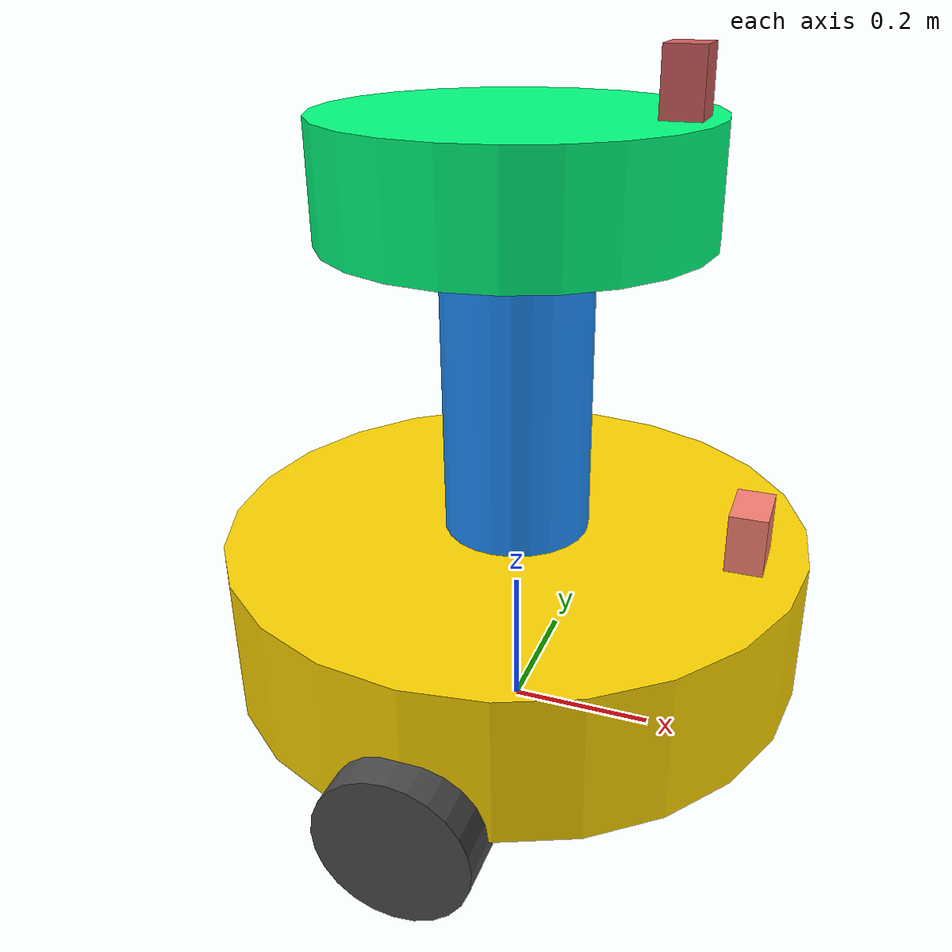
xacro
<?xml version="1.0"?>
<!-- Stage 9: reuse every stage-8 physical part and existing plugin unchanged. -->
<robot name="lesson13_robot" xmlns:xacro="http://www.ros.org/wiki/xacro">
  <xacro:include filename="myrobot_tf_step8.xacro"/>
  <xacro:include filename="gazebo_sensor/lesson14_camera_step9.xacro"/>
</robot>

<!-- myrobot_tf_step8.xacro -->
<robot name="lesson13_robot" xmlns:xacro="http://www.ros.org/wiki/xacro">
  <xacro:include filename="myrobot_laser_step7.xacro"/>

  <gazebo>
    <plugin name="lesson14_aux_joint_states" filename="libgazebo_ros_joint_state_publisher.so">
      <robotNamespace>/</robotNamespace>
      <updateRate>50</updateRate>
      <jointName>front_support_wheel_link2_base_link,back_support_wheel_link2_base_link,laser_scan_link2platform_link,depth_camera_link2base_link</jointName>
    </plugin>
  </gazebo>
</robot>

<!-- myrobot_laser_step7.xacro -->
<!-- Stage 7: retain the stage-6 robot and single drive plugin; add only lidar. -->
<robot name="lesson13_robot" xmlns:xacro="http://www.ros.org/wiki/xacro">
  <xacro:include filename="myrobot_drive_step6.xacro"/>
  <xacro:include filename="gazebo_sensor/lesson14_laser_step7.xacro"/>
</robot>

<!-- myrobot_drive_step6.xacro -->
<!-- Stage 6: retain the proven stage-4 model; add only the differential drive. -->
<robot name="lesson13_robot" xmlns:xacro="http://www.ros.org/wiki/xacro">
  <!-- Relative include resolves beside this file inside rcdp/urdf/gazebo/. -->
  <xacro:include filename="myrobot_gazebo_step4.xacro"/>

  <gazebo>
    <plugin name="lesson13_diff_drive" filename="libgazebo_ros_diff_drive.so">
      <robotNamespace>/</robotNamespace>
      <updateRate>100</updateRate>
      <leftJoint>base_l_wheel_joint</leftJoint>
      <rightJoint>base_r_wheel_joint</rightJoint>
      <wheelSeparation>${2.0*base_radius}</wheelSeparation>
      <wheelDiameter>${2.0*move_wheel_radius}</wheelDiameter>
      <!-- wheelAcceleration is the wheel tangential speed ramp in m/s^2. -->
      <wheelAcceleration>0.3</wheelAcceleration>
      <wheelTorque>5.0</wheelTorque>
      <commandTopic>/cmd_vel</commandTopic>
      <odometryTopic>/odom</odometryTopic>
      <odometryFrame>odom</odometryFrame>
      <robotBaseFrame>root_link</robotBaseFrame>
      <!-- Ground-truth simulation odometry, not a real encoder estimator. -->
      <odometrySource>world</odometrySource>
      <publishTf>true</publishTf>
      <publishOdomTF>true</publishOdomTF>
      <!-- A later robot_state_publisher should own link transforms. -->
      <publishWheelTF>false</publishWheelTF>
      <publishWheelJointState>true</publishWheelJointState>
    </plugin>
  </gazebo>
</robot>

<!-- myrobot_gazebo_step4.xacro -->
<robot name="lesson13_robot" xmlns:xacro="http://www.ros.org/wiki/xacro">
  <xacro:property name="Pi" value="3.141592653589793"/>
  <xacro:property name="base_radius" value="0.4"/>
  <xacro:property name="base_height" value="0.2"/>
  <xacro:property name="move_wheel_radius" value="0.1"/>
  <xacro:property name="move_wheel_height" value="0.08"/>
  <xacro:property name="support_wheel_radius" value="0.05"/>
  <xacro:property name="support_radius" value="0.1"/>
  <xacro:property name="support_height" value="0.4"/>
  <xacro:property name="platform_radius" value="0.25"/>
  <xacro:property name="platform_height" value="0.15"/>
  <xacro:property name="laser_length" value="0.05"/>
  <xacro:property name="laser_width" value="0.06"/>
  <xacro:property name="laser_height" value="0.08"/>
  <xacro:property name="depth_length" value="0.05"/>
  <xacro:property name="depth_width" value="0.08"/>
  <xacro:property name="depth_height" value="0.08"/>

  <!-- Cylinder symmetry axis is the link's Z axis. -->
  <xacro:macro name="cylinder_z_inertia" params="m r h">
    <inertial>
      <origin xyz="0 0 0" rpy="0 0 0"/>
      <mass value="${m}"/>
      <inertia ixx="${m*(3*r*r+h*h)/12.0}" ixy="0" ixz="0"
               iyy="${m*(3*r*r+h*h)/12.0}" iyz="0" izz="${m*r*r/2.0}"/>
    </inertial>
  </xacro:macro>

  <!-- Wheel cylinder symmetry axis is Y, matching its collision and joint. -->
  <xacro:macro name="wheel_y_inertia" params="m r h">
    <inertial>
      <origin xyz="0 0 0" rpy="0 0 0"/>
      <mass value="${m}"/>
      <inertia ixx="${m*(3*r*r+h*h)/12.0}" ixy="0" ixz="0"
               iyy="${m*r*r/2.0}" iyz="0" izz="${m*(3*r*r+h*h)/12.0}"/>
    </inertial>
  </xacro:macro>

  <xacro:macro name="sphere_inertia" params="m r">
    <inertial>
      <origin xyz="0 0 0" rpy="0 0 0"/>
      <mass value="${m}"/>
      <inertia ixx="${2.0*m*r*r/5.0}" ixy="0" ixz="0"
               iyy="${2.0*m*r*r/5.0}" iyz="0" izz="${2.0*m*r*r/5.0}"/>
    </inertial>
  </xacro:macro>

  <!-- Box dimensions are x along X, y along Y, z along Z. -->
  <xacro:macro name="box_inertia" params="m x y z">
    <inertial>
      <origin xyz="0 0 0" rpy="0 0 0"/>
      <mass value="${m}"/>
      <inertia ixx="${m*(y*y+z*z)/12.0}" ixy="0" ixz="0"
               iyy="${m*(x*x+z*z)/12.0}" iyz="0" izz="${m*(x*x+y*y)/12.0}"/>
    </inertial>
  </xacro:macro>

  <xacro:macro name="cylinder_body" params="name r h m rgba gz_material">
    <link name="${name}">
      <visual>
        <geometry><cylinder radius="${r}" length="${h}"/></geometry>
        <material name="${name}_color"><color rgba="${rgba}"/></material>
      </visual>
      <collision>
        <geometry><cylinder radius="${r}" length="${h}"/></geometry>
      </collision>
      <xacro:cylinder_z_inertia m="${m}" r="${r}" h="${h}"/>
    </link>
    <gazebo reference="${name}"><material>${gz_material}</material></gazebo>
  </xacro:macro>

  <xacro:macro name="box_body" params="name x y z m rgba gz_material">
    <link name="${name}">
      <visual>
        <geometry><box size="${x} ${y} ${z}"/></geometry>
        <material name="${name}_color"><color rgba="${rgba}"/></material>
      </visual>
      <collision><geometry><box size="${x} ${y} ${z}"/></geometry></collision>
      <xacro:box_inertia m="${m}" x="${x}" y="${y}" z="${z}"/>
    </link>
    <gazebo reference="${name}"><material>${gz_material}</material></gazebo>
  </xacro:macro>

  <xacro:macro name="contact_parameters" params="name mu">
    <gazebo reference="${name}">
      <mu1>${mu}</mu1><mu2>${mu}</mu2>
      <kp>100000</kp><kd>10</kd>
      <minDepth>0.001</minDepth><maxVel>0.1</maxVel>
    </gazebo>
  </xacro:macro>

  <!-- Massless reference only: no tiny physical body or inertia at the root. -->
  <link name="root_link"/>

  <xacro:cylinder_body name="base_link" r="${base_radius}" h="${base_height}"
                       m="5.0" rgba="1 0.843 0 1" gz_material="Gazebo/Yellow"/>
  <xacro:cylinder_body name="support_link" r="${support_radius}" h="${support_height}"
                       m="0.3" rgba="0.118 0.565 1 1" gz_material="Gazebo/Blue"/>
  <xacro:cylinder_body name="platform_link" r="${platform_radius}" h="${platform_height}"
                       m="1.0" rgba="0 1 0.498 1" gz_material="Gazebo/Green"/>

  <joint name="base_link2root_link" type="fixed">
    <parent link="root_link"/><child link="base_link"/>
    <origin xyz="0 0 ${base_height/2.0+move_wheel_radius}" rpy="0 0 0"/>
  </joint>
  <joint name="support_link2base_link" type="fixed">
    <parent link="base_link"/><child link="support_link"/>
    <origin xyz="0 0 ${base_height/2.0+support_height/2.0}" rpy="0 0 0"/>
  </joint>
  <joint name="platform_link2support_link" type="fixed">
    <parent link="support_link"/><child link="platform_link"/>
    <origin xyz="0 0 ${support_height/2.0+platform_height/2.0}" rpy="0 0 0"/>
  </joint>

  <xacro:macro name="support_wheel" params="wheel_name flag">
    <link name="${wheel_name}_support_wheel_link">
      <visual>
        <geometry><sphere radius="${support_wheel_radius}"/></geometry>
        <material name="${wheel_name}_support_color"><color rgba="0.933 0.51 0.933 1"/></material>
      </visual>
      <collision><geometry><sphere radius="${support_wheel_radius}"/></geometry></collision>
      <xacro:sphere_inertia m="0.05" r="${support_wheel_radius}"/>
    </link>
    <joint name="${wheel_name}_support_wheel_link2_base_link" type="continuous">
      <parent link="base_link"/><child link="${wheel_name}_support_wheel_link"/>
      <origin xyz="${flag*0.8*base_radius} 0 ${-(base_height/2.0+support_wheel_radius)}" rpy="0 0 0"/>
      <!-- Unit vector in the same (1,1,1) direction as the teaching model. -->
      <axis xyz="0.577350269189626 0.577350269189626 0.577350269189626"/>
      <limit effort="1" velocity="20"/>
      <dynamics damping="0.001" friction="0"/>
    </joint>
    <gazebo reference="${wheel_name}_support_wheel_link"><material>Gazebo/Grey</material></gazebo>
    <!-- Low-friction teaching approximation; this is not a true caster. -->
    <xacro:contact_parameters name="${wheel_name}_support_wheel_link" mu="0.01"/>
  </xacro:macro>
  <xacro:support_wheel wheel_name="front" flag="1"/>
  <xacro:support_wheel wheel_name="back" flag="-1"/>

  <xacro:macro name="drive_wheel" params="wheel_name flag side">
    <link name="${wheel_name}_wheel_link">
      <visual>
        <origin xyz="0 0 0" rpy="${Pi/2.0} 0 0"/>
        <geometry><cylinder radius="${move_wheel_radius}" length="${move_wheel_height}"/></geometry>
        <material name="${wheel_name}_wheel_color"><color rgba="0.3 0.3 0.3 1"/></material>
      </visual>
      <collision>
        <origin xyz="0 0 0" rpy="${Pi/2.0} 0 0"/>
        <geometry><cylinder radius="${move_wheel_radius}" length="${move_wheel_height}"/></geometry>
      </collision>
      <xacro:wheel_y_inertia m="0.3" r="${move_wheel_radius}" h="${move_wheel_height}"/>
    </link>
    <joint name="base_${side}_wheel_joint" type="continuous">
      <parent link="base_link"/><child link="${wheel_name}_wheel_link"/>
      <origin xyz="0 ${flag*base_radius} ${-base_height/2.0}" rpy="0 0 0"/>
      <axis xyz="0 1 0"/>
      <limit effort="10" velocity="10"/>
      <dynamics damping="0.02" friction="0"/>
    </joint>
    <gazebo reference="${wheel_name}_wheel_link"><material>Gazebo/Grey</material></gazebo>
    <xacro:contact_parameters name="${wheel_name}_wheel_link" mu="0.8"/>
  </xacro:macro>
  <xacro:drive_wheel wheel_name="left" flag="1" side="l"/>
  <xacro:drive_wheel wheel_name="right" flag="-1" side="r"/>

  <xacro:box_body name="laser_scan_link" x="${laser_length}" y="${laser_width}" z="${laser_height}"
                  m="0.1" rgba="0.804 0.361 0.361 1" gz_material="Gazebo/Red"/>
  <xacro:box_body name="depth_camera_link" x="${depth_length}" y="${depth_width}" z="${depth_height}"
                  m="0.1" rgba="0.981 0.502 0.447 1" gz_material="Gazebo/Orange"/>

  <joint name="laser_scan_link2platform_link" type="continuous">
    <parent link="platform_link"/><child link="laser_scan_link"/>
    <origin xyz="${0.8*platform_radius} 0 ${platform_height/2.0+laser_height/2.0}" rpy="0 0 0"/>
    <axis xyz="0 0 1"/>
    <limit effort="1" velocity="5"/>
    <dynamics damping="0.05" friction="0"/>
  </joint>
  <joint name="depth_camera_link2base_link" type="revolute">
    <parent link="base_link"/><child link="depth_camera_link"/>
    <origin xyz="${0.8*base_radius} 0 ${base_height/2.0+depth_height/2.0}" rpy="0 0 0"/>
    <axis xyz="0 0 1"/>
    <!-- The slide requires +/-180 degrees; the original code used +/-1.57. -->
    <limit lower="${-Pi}" upper="${Pi}" effort="10" velocity="3"/>
    <dynamics damping="0.05" friction="0"/>
  </joint>

  <gazebo><static>false</static></gazebo>
</robot>

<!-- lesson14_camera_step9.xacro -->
<robot name="lesson14_camera" xmlns:xacro="http://www.ros.org/wiki/xacro">
  <link name="rotate_depth_camera_link"/>
  <joint name="depth_camera_optical_joint_step9" type="fixed">
    <parent link="depth_camera_link"/>
    <child link="rotate_depth_camera_link"/>
    <origin xyz="${depth_length/2.0+0.001} 0 0" rpy="${-Pi/2.0} 0 ${-Pi/2.0}"/>
  </joint>

  <gazebo reference="depth_camera_link">
    <sensor type="depth" name="lesson14_kinect_step9">
      <pose>${depth_length/2.0+0.001} 0 0 0 0 0</pose>
      <always_on>true</always_on>
      <!-- Lesson14 uses 20 Hz at the sensor; begin with 10 Hz in VMware. -->
      <update_rate>10.0</update_rate>
      <camera>
        <horizontal_fov>${Pi/3.0}</horizontal_fov>
        <image>
          <format>R8G8B8</format>
          <width>640</width>
          <height>480</height>
        </image>
        <clip>
          <near>0.05</near>
          <far>8.0</far>
        </clip>
      </camera>
      <plugin name="lesson14_kinect_step9_controller" filename="libgazebo_ros_openni_kinect.so">
        <robotNamespace>/</robotNamespace>
        <cameraName>kinect</cameraName>
        <updateRate>10.0</updateRate>
        <imageTopicName>rgb/image_raw</imageTopicName>
        <depthImageTopicName>depth/image_raw</depthImageTopicName>
        <pointCloudTopicName>depth/points</pointCloudTopicName>
        <cameraInfoTopicName>rgb/camera_info</cameraInfoTopicName>
        <depthImageCameraInfoTopicName>depth/camera_info</depthImageCameraInfoTopicName>
        <frameName>rotate_depth_camera_link</frameName>
        <hackBaseline>0.0</hackBaseline>
        <distortionK1>0.0</distortionK1>
        <distortionK2>0.0</distortionK2>
        <distortionK3>0.0</distortionK3>
        <distortionT1>0.0</distortionT1>
        <distortionT2>0.0</distortionT2>
        <pointCloudCutoff>0.4</pointCloudCutoff>
        <pointCloudCutoffMax>8.0</pointCloudCutoffMax>
      </plugin>
    </sensor>
  </gazebo>
</robot>
